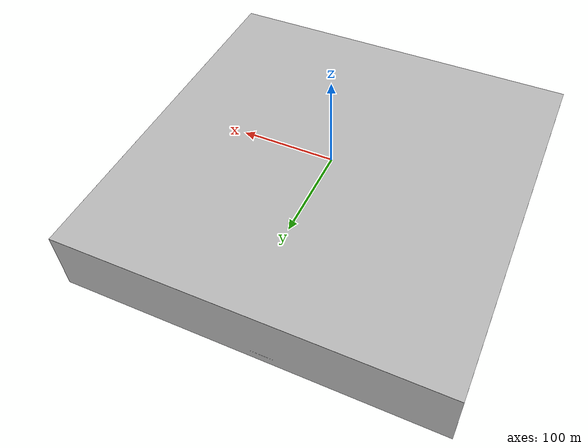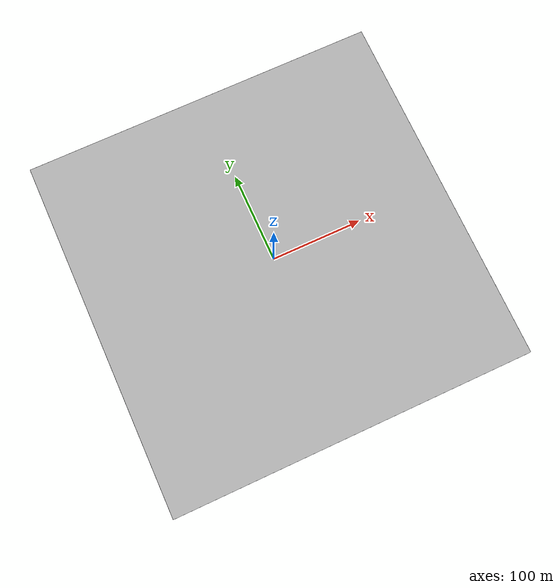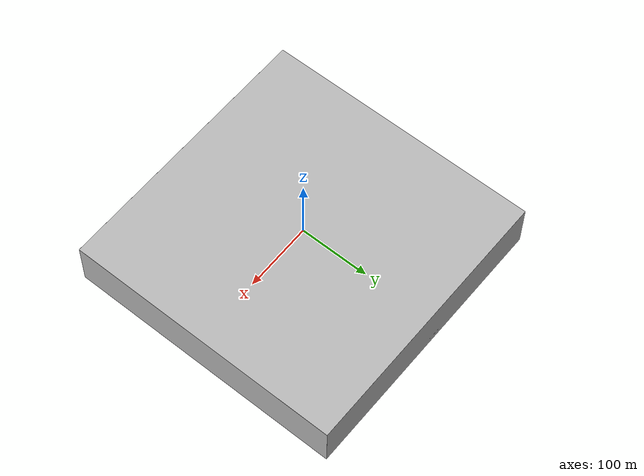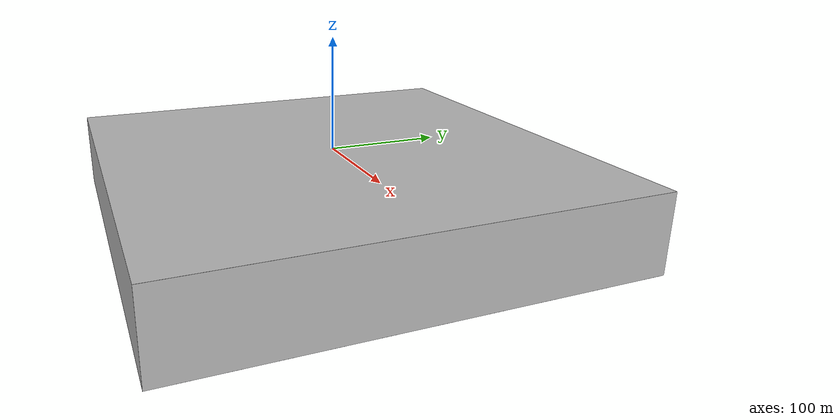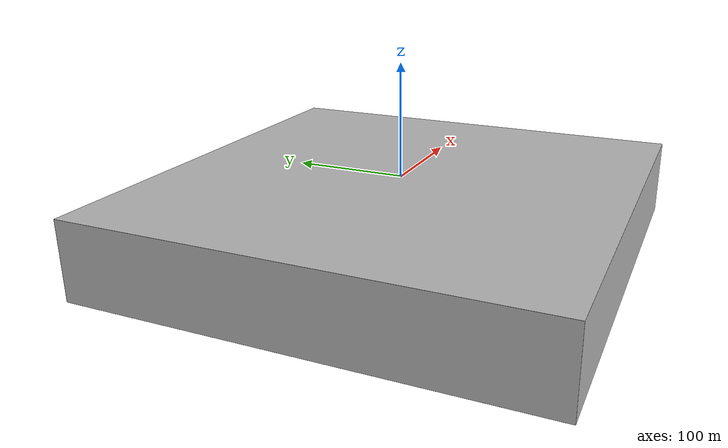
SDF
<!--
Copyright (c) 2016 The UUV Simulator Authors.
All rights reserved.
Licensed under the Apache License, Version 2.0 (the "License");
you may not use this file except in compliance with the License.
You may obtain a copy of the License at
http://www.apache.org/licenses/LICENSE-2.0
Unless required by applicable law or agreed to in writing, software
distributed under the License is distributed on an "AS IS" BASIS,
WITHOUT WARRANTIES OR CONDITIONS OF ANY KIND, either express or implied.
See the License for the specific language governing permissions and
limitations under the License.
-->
<?xml version="1.0" ?>
<sdf version="1.4">
  <world name="dice">
    <physics name="default_physics" default="true" type="ode">
      <max_step_size>0.01</max_step_size>
      <real_time_factor>1</real_time_factor>
      <real_time_update_rate>100</real_time_update_rate>
      <ode>
        <solver>
          <type>quick</type>
          <iters>50</iters>
          <sor>1.2</sor>
        </solver>
      </ode>
    </physics>
    <scene>
      <ambient>0.01 0.01 0.01 1.0</ambient>
      <sky>
        <clouds>
          <speed>12</speed>
        </clouds>
      </sky>
      <shadows>1</shadows>
      <fog>
        <color>0.1 0.2 0.3 1.0</color>
        <type>linear</type>
        <density>0.1</density>
        <start>10</start>
        <end>40</end>
      </fog>
    </scene>

    <!--
      Location of the M/S Herkules ship wreck on the Trondheim fjord, Norway
      Source: http://www.dykkepedia.com/wiki/Herkules
    -->
    <spherical_coordinates>
      <latitude_deg>63.4534333</latitude_deg>
      <longitude_deg>10.4055667</longitude_deg>
    </spherical_coordinates>

    <!-- Global light source -->
    <light type="directional" name="sun_diffuse_1">
      <pose>-200 -200 100 0 0 0</pose>
      <diffuse>0.6 0.6 0.6 1</diffuse>
      <specular>0 0 0 1</specular>
      <direction>-0.3 -0.3 -1</direction>
      <cast_shadows>true</cast_shadows>
    </light>

    <light type="directional" name="sun_diffuse_2">
      <pose>-100 50 200 0 0 0</pose>
      <diffuse>0.9 0.9 0.9 1</diffuse>
      <specular>0 0 0 1</specular>
      <direction>-0.3 -0.3 -1</direction>
      <cast_shadows>true</cast_shadows>
    </light>

    <light type="directional" name="sun_diffuse_3">
      <pose>-150 -130 50 0 0 0</pose>
      <diffuse>0.9 0.9 0.9 1</diffuse>
      <specular>0.2 0.2 0.2 1</specular>
      <direction>0.5 0.5 -1</direction>
      <cast_shadows>true</cast_shadows>
    </light>

    <light type="directional" name="sun_diffuse_4">
      <pose>-150 -130 50 0 0 0</pose>
      <diffuse>0.9 0.9 0.9 1</diffuse>
      <specular>0.2 0.2 0.2 1</specular>
      <direction>0.5 0.5 -1</direction>
      <cast_shadows>true</cast_shadows>
    </light>

    <light type="directional" name="sun_diffuse_5">
      <pose>-150 -130 50 0 0 0</pose>
      <diffuse>0.9 0.9 0.9 1</diffuse>
      <specular>0.2 0.2 0.2 1</specular>
      <direction>0.5 0.5 -1</direction>
      <cast_shadows>true</cast_shadows>
    </light>

    <!-- Seabed terrain around Munkholmen model -->
    <include>
      <uri>model://robosub_2018</uri>
      <pose>0 0 0 0 0 0</pose>
    </include>

    <plugin name="underwater_current_plugin" filename="libuuv_underwater_current_ros_plugin.so">
      <namespace>hydrodynamics</namespace>
      <constant_current>
        <topic>current_velocity</topic>
        <velocity>
          <mean>0</mean>
          <min>0</min>
          <max>5</max>
          <mu>0.0</mu>
          <noiseAmp>0.0</noiseAmp>
        </velocity>

        <horizontal_angle>
          <mean>0</mean>
          <min>-3.141592653589793238</min>
          <max>3.141592653589793238</max>
          <mu>0.0</mu>
          <noiseAmp>0.0</noiseAmp>
        </horizontal_angle>

        <vertical_angle>
          <mean>0</mean>
          <min>-3.141592653589793238</min>
          <max>3.141592653589793238</max>
          <mu>0.0</mu>
          <noiseAmp>0.0</noiseAmp>
        </vertical_angle>
      </constant_current>
    </plugin>

    <plugin name="sc_interface" filename="libuuv_sc_ros_interface_plugin.so"/>

    <gui fullscreen='0'>
      <camera name='user_camera'>
        <pose frame=''>-25 25 -55 0 0 -0.8</pose>
        <view_controller>orbit</view_controller>
        <projection_type>perspective</projection_type>
      </camera>
    </gui>
  </world>
</sdf>

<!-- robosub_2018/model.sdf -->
<sdf version="1.5">
  <model name="herkules_seabed">
    <static>true</static>
    <link name="seabed">
      <collision name="seabed">
        <pose>0 0 -60 0 0 0</pose>
        <geometry>
          <mesh>
            <uri>model://herkules_seabed/meshes/herkules_seabed.dae</uri>
            <scale>4.0 4.0 1.0</scale>
          </mesh>
        </geometry>
      </collision>

      <visual name="seabed">
        <cast_shadows>true</cast_shadows>
        <pose>0 0 -60 0 0 0</pose>
        <geometry>
          <mesh>
            <uri>model://herkules_seabed/meshes/herkules_seabed.dae</uri>
            <scale>4.0 4.0 1.0</scale>
          </mesh>
        </geometry>
        <material>
          <script>
            <uri>file://Media/materials/scripts/sand.material</uri>
            <name>UUVSimulator/SandAndStones</name>
          </script>
        </material>
      </visual>
    </link>

    <link name="ocean_link">
      <visual name="surface">
        <pose>0 0 0 0 0 0</pose>
        <geometry>
          <box>
            <size>400 400 0.1</size>
          </box>
        </geometry>
        <material>
          <script>
            <uri>file://Media/materials/scripts/water.material</uri>
            <name>UUVSimulator/StaticWater</name>
          </script>
        </material>
      </visual>
      <visual name="dice1">
        <pose> -31 -35 -42 0 0 -0.4235</pose>
        <geometry>
          <mesh><uri>model://dice/dice1.dae</uri><scale>1 1 1</scale></mesh>
        </geometry>
      </visual>

      <collision name="dice1">
        <pose> -31 -35 -42 0 0 -0.4235</pose>
        <geometry>
          <mesh><uri>model://dice/dice1.dae</uri><scale>1 1 1</scale></mesh>
        </geometry>
      </collision>

      <visual name="dice2">
        <pose> -29 -30 -49 0 0 0</pose>
        <geometry>
          <mesh><uri>model://dice/dice2.dae</uri><scale>1 1 1</scale></mesh>
        </geometry>
      </visual>

      <collision name="dice2">
        <pose> -29 -30 -49 0 0 0</pose>
        <geometry>
          <mesh><uri>model://dice/dice2.dae</uri><scale>1 1 1</scale></mesh>
        </geometry>
      </collision>

      <visual name="dice5">
        <pose> -29 -36 -46 0 0 -0.6853</pose>
        <geometry>
          <mesh><uri>model://dice/dice5.dae</uri><scale>1 1 1</scale></mesh>
        </geometry>
      </visual>

      <collision name="dice5">
        <pose> -29 -30 -46 0 0 -0.6853</pose>
        <geometry>
          <mesh><uri>model://dice/dice5.dae</uri><scale>1 1 1</scale></mesh>
        </geometry>
      </collision>

      <visual name="dice6">
        <pose> -31 -31 -44 0 0  0.5235</pose>
        <geometry>
          <mesh><uri>model://dice/dice6.dae</uri><scale>1 1 1</scale></mesh>
        </geometry>
      </visual>

      <collision name="dice6">
        <pose> -31 -31 -44 0 0  0.5235</pose>
        <geometry>
          <mesh><uri>model://dice/dice6.dae</uri><scale>1 1 1</scale></mesh>
        </geometry>
      </collision>

      <visual name="gold_chip">
        <pose> -41 -38 -50 0 0 -1.57</pose>
        <geometry>
          <mesh><uri>model://robosub_2018/buy_gold_chip.dae</uri><scale>1 1 1</scale></mesh>
        </geometry>
      </visual>

      <collision name="gold_chip">
        <pose> -41 -38 -50 0 0 -1.57</pose>
        <geometry>
          <mesh><uri>model://robosub_2018/buy_gold_chip.dae</uri><scale>1 1 1</scale></mesh>
        </geometry>
      </collision>

      <visual name="bottom">
        <pose>0 0 -70.0 0 0 0</pose>
        <geometry>
          <box>
            <size>400 400 0.1</size>
          </box>
        </geometry>
        <material>
          <script>
            <uri>file://Media/materials/scripts/water.material</uri>
            <name>UUVSimulator/SeaWall</name>
          </script>
        </material>
      </visual>

      <visual name="north_wall">
        <pose>0 200 -35.0 0 0 0</pose>
        <geometry>
          <box>
            <size>400 0.1 70</size>
          </box>
        </geometry>
        <material>
          <script>
            <uri>file://Media/materials/scripts/water.material</uri>
            <name>UUVSimulator/SeaWall</name>
          </script>
        </material>
      </visual>

      <visual name="south_wall">
        <pose>0 -200 -35.0 0 0 0</pose>
        <geometry>
          <box>
            <size>400 0.1 70</size>
          </box>
        </geometry>
        <material>
          <script>
            <uri>file://Media/materials/scripts/water.material</uri>
            <name>UUVSimulator/SeaWall</name>
          </script>
        </material>
      </visual>

      <visual name="east_wall">
        <pose>200 0 -35.0 0 0 0</pose>
        <geometry>
          <box>
            <size>0.1 400 70</size>
          </box>
        </geometry>
        <material>
          <script>
            <uri>file://Media/materials/scripts/water.material</uri>
            <name>UUVSimulator/SeaWall</name>
          </script>
        </material>
      </visual>

      <visual name="west_wall">
        <pose>-200 0 -35.0 0 0 0</pose>
        <geometry>
          <box>
            <size>0.1 400 70</size>
          </box>
        </geometry>
        <material>
          <script>
            <uri>file://Media/materials/scripts/water.material</uri>
            <name>UUVSimulator/SeaWall</name>
          </script>
        </material>
      </visual>
    </link>
  </model>
</sdf>
